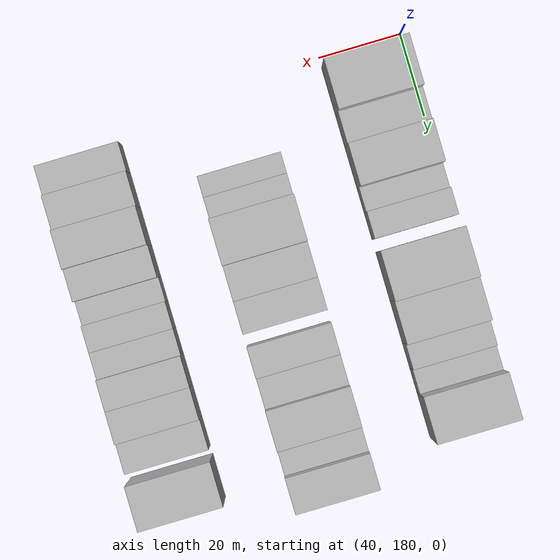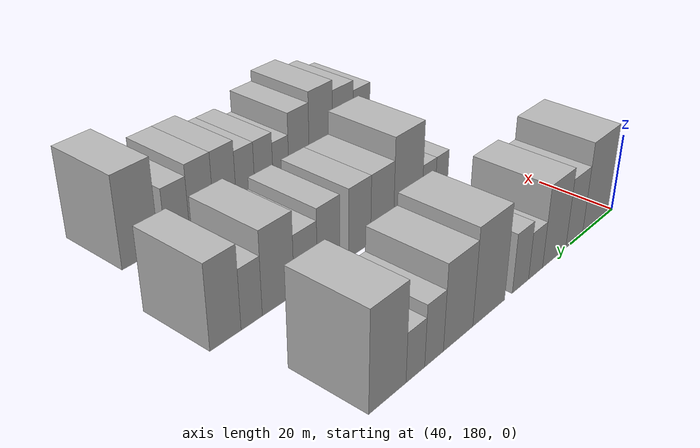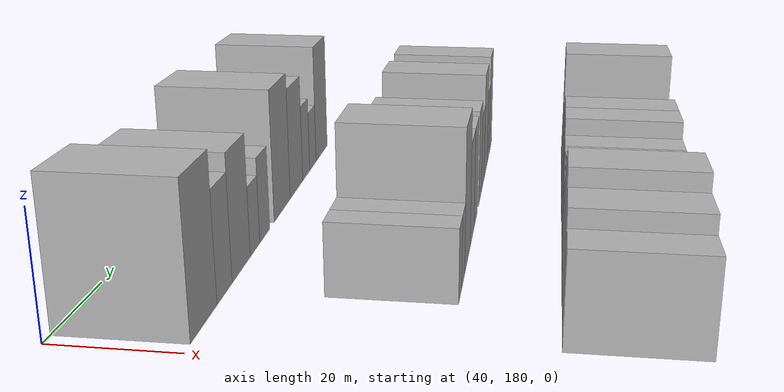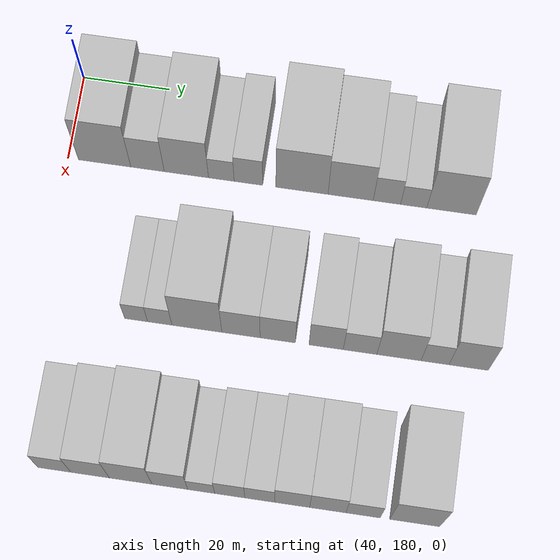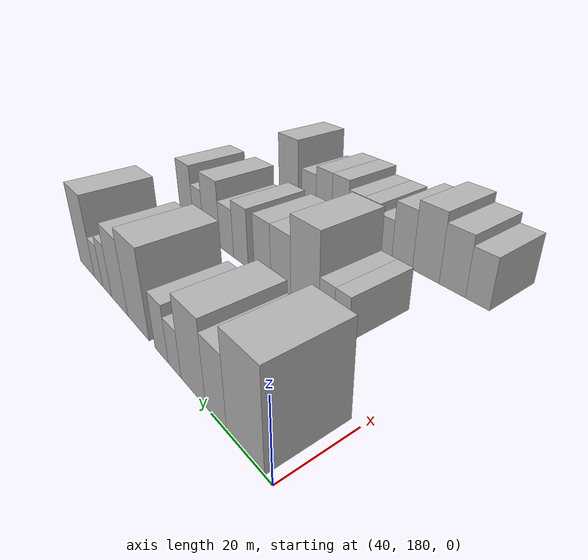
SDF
<sdf version="1.6">
 <world name="default">
  <model name="building_63">
   <static>1</static>
   <pose>50.0000 188.4641 0 0.000000 0.000000 0.000000</pose>
   <link name="link">
    <pose>0 0 12.00 0 0 0</pose>
    <collision name="collision"><geometry><box><size>20.0000 11.9973 24.0000</size></box></geometry></collision>
    <visual name="visual">
     <cast_shadows>0</cast_shadows>
     <geometry><box><size>20.0000 11.9973 24.0000</size></box></geometry>
     <material>
      <script>
       <uri>model://HANNAS_wall/materials/scripts</uri>
       <uri>model://HANNAS_wall/materials/textures</uri>
       <name>vrc/HANNAS_wall</name>
      </script>
     </material>
    </visual>
   </link>
  </model>
  <model name="building_64">
   <static>1</static>
   <pose>50.0000 198.2894 0 0.000000 0.000000 0.000000</pose>
   <link name="link">
    <pose>0 0 9.00 0 0 0</pose>
    <collision name="collision"><geometry><box><size>20.0000 7.6532 18.0000</size></box></geometry></collision>
    <visual name="visual">
     <cast_shadows>0</cast_shadows>
     <geometry><box><size>20.0000 7.6532 18.0000</size></box></geometry>
     <material>
      <script>
       <uri>model://HANNAS_wall/materials/scripts</uri>
       <uri>model://HANNAS_wall/materials/textures</uri>
       <name>vrc/HANNAS_wall</name>
      </script>
     </material>
    </visual>
   </link>
  </model>
  <model name="building_65">
   <static>1</static>
   <pose>50.0000 207.1650 0 0.000000 0.000000 0.000000</pose>
   <link name="link">
    <pose>0 0 10.50 0 0 0</pose>
    <collision name="collision"><geometry><box><size>20.0000 10.0982 21.0000</size></box></geometry></collision>
    <visual name="visual">
     <cast_shadows>0</cast_shadows>
     <geometry><box><size>20.0000 10.0982 21.0000</size></box></geometry>
     <material>
      <script>
       <uri>model://HANNAS_wall/materials/scripts</uri>
       <uri>model://HANNAS_wall/materials/textures</uri>
       <name>vrc/HANNAS_wall</name>
      </script>
     </material>
    </visual>
   </link>
  </model>
  <model name="building_66">
   <static>1</static>
   <pose>50.0000 215.1283 0 0.000000 0.000000 0.000000</pose>
   <link name="link">
    <pose>0 0 6.00 0 0 0</pose>
    <collision name="collision"><geometry><box><size>20.0000 5.8283 12.0000</size></box></geometry></collision>
    <visual name="visual">
     <cast_shadows>0</cast_shadows>
     <geometry><box><size>20.0000 5.8283 12.0000</size></box></geometry>
     <material>
      <script>
       <uri>model://HANNAS_wall/materials/scripts</uri>
       <uri>model://HANNAS_wall/materials/textures</uri>
       <name>vrc/HANNAS_wall</name>
      </script>
     </material>
    </visual>
   </link>
  </model>
  <model name="building_67">
   <static>1</static>
   <pose>50.0000 221.2899 0 0.000000 0.000000 0.000000</pose>
   <link name="link">
    <pose>0 0 7.50 0 0 0</pose>
    <collision name="collision"><geometry><box><size>20.0000 6.4949 15.0000</size></box></geometry></collision>
    <visual name="visual">
     <cast_shadows>0</cast_shadows>
     <geometry><box><size>20.0000 6.4949 15.0000</size></box></geometry>
     <material>
      <script>
       <uri>model://HANNAS_wall/materials/scripts</uri>
       <uri>model://HANNAS_wall/materials/textures</uri>
       <name>vrc/HANNAS_wall</name>
      </script>
     </material>
    </visual>
   </link>
  </model>
  <model name="building_68">
   <static>1</static>
   <pose>50.0000 233.4532 0 0.000000 0.000000 0.000000</pose>
   <link name="link">
    <pose>0 0 12.00 0 0 0</pose>
    <collision name="collision"><geometry><box><size>20.0000 11.8316 24.0000</size></box></geometry></collision>
    <visual name="visual">
     <cast_shadows>0</cast_shadows>
     <geometry><box><size>20.0000 11.8316 24.0000</size></box></geometry>
     <material>
      <script>
       <uri>model://HANNAS_wall/materials/scripts</uri>
       <uri>model://HANNAS_wall/materials/textures</uri>
       <name>vrc/HANNAS_wall</name>
      </script>
     </material>
    </visual>
   </link>
  </model>
  <model name="building_69">
   <static>1</static>
   <pose>50.0000 244.4825 0 0.000000 0.000000 0.000000</pose>
   <link name="link">
    <pose>0 0 10.50 0 0 0</pose>
    <collision name="collision"><geometry><box><size>20.0000 10.2271 21.0000</size></box></geometry></collision>
    <visual name="visual">
     <cast_shadows>0</cast_shadows>
     <geometry><box><size>20.0000 10.2271 21.0000</size></box></geometry>
     <material>
      <script>
       <uri>model://HANNAS_wall/materials/scripts</uri>
       <uri>model://HANNAS_wall/materials/textures</uri>
       <name>vrc/HANNAS_wall</name>
      </script>
     </material>
    </visual>
   </link>
  </model>
  <model name="building_70">
   <static>1</static>
   <pose>50.0000 252.6746 0 0.000000 0.000000 0.000000</pose>
   <link name="link">
    <pose>0 0 7.50 0 0 0</pose>
    <collision name="collision"><geometry><box><size>20.0000 6.1571 15.0000</size></box></geometry></collision>
    <visual name="visual">
     <cast_shadows>0</cast_shadows>
     <geometry><box><size>20.0000 6.1571 15.0000</size></box></geometry>
     <material>
      <script>
       <uri>model://HANNAS_wall/materials/scripts</uri>
       <uri>model://HANNAS_wall/materials/textures</uri>
       <name>vrc/HANNAS_wall</name>
      </script>
     </material>
    </visual>
   </link>
  </model>
  <model name="building_71">
   <static>1</static>
   <pose>50.0000 258.7114 0 0.000000 0.000000 0.000000</pose>
   <link name="link">
    <pose>0 0 6.00 0 0 0</pose>
    <collision name="collision"><geometry><box><size>20.0000 5.9164 12.0000</size></box></geometry></collision>
    <visual name="visual">
     <cast_shadows>0</cast_shadows>
     <geometry><box><size>20.0000 5.9164 12.0000</size></box></geometry>
     <material>
      <script>
       <uri>model://HANNAS_wall/materials/scripts</uri>
       <uri>model://HANNAS_wall/materials/textures</uri>
       <name>vrc/HANNAS_wall</name>
      </script>
     </material>
    </visual>
   </link>
  </model>
  <model name="building_72">
   <static>1</static>
   <pose>50.0000 267.2373 0 0.000000 0.000000 0.000000</pose>
   <link name="link">
    <pose>0 0 12.00 0 0 0</pose>
    <collision name="collision"><geometry><box><size>20.0000 11.1354 24.0000</size></box></geometry></collision>
    <visual name="visual">
     <cast_shadows>0</cast_shadows>
     <geometry><box><size>20.0000 11.1354 24.0000</size></box></geometry>
     <material>
      <script>
       <uri>model://HANNAS_wall/materials/scripts</uri>
       <uri>model://HANNAS_wall/materials/textures</uri>
       <name>vrc/HANNAS_wall</name>
      </script>
     </material>
    </visual>
   </link>
  </model>
  <model name="building_149">
   <static>1</static>
   <pose>85.0000 201.7659 0 0.000000 0.000000 0.000000</pose>
   <link name="link">
    <pose>0 0 6.00 0 0 0</pose>
    <collision name="collision"><geometry><box><size>20.0000 5.0970 12.0000</size></box></geometry></collision>
    <visual name="visual">
     <cast_shadows>0</cast_shadows>
     <geometry><box><size>20.0000 5.0970 12.0000</size></box></geometry>
     <material>
      <script>
       <uri>model://HANNAS_wall/materials/scripts</uri>
       <uri>model://HANNAS_wall/materials/textures</uri>
       <name>vrc/HANNAS_wall</name>
      </script>
     </material>
    </visual>
   </link>
  </model>
  <model name="building_150">
   <static>1</static>
   <pose>85.0000 207.0066 0 0.000000 0.000000 0.000000</pose>
   <link name="link">
    <pose>0 0 6.00 0 0 0</pose>
    <collision name="collision"><geometry><box><size>20.0000 5.3845 12.0000</size></box></geometry></collision>
    <visual name="visual">
     <cast_shadows>0</cast_shadows>
     <geometry><box><size>20.0000 5.3845 12.0000</size></box></geometry>
     <material>
      <script>
       <uri>model://HANNAS_wall/materials/scripts</uri>
       <uri>model://HANNAS_wall/materials/textures</uri>
       <name>vrc/HANNAS_wall</name>
      </script>
     </material>
    </visual>
   </link>
  </model>
  <model name="building_151">
   <static>1</static>
   <pose>85.0000 215.2189 0 0.000000 0.000000 0.000000</pose>
   <link name="link">
    <pose>0 0 12.00 0 0 0</pose>
    <collision name="collision"><geometry><box><size>20.0000 11.0400 24.0000</size></box></geometry></collision>
    <visual name="visual">
     <cast_shadows>0</cast_shadows>
     <geometry><box><size>20.0000 11.0400 24.0000</size></box></geometry>
     <material>
      <script>
       <uri>model://HANNAS_wall/materials/scripts</uri>
       <uri>model://HANNAS_wall/materials/textures</uri>
       <name>vrc/HANNAS_wall</name>
      </script>
     </material>
    </visual>
   </link>
  </model>
  <model name="building_152">
   <static>1</static>
   <pose>85.0000 224.9638 0 0.000000 0.000000 0.000000</pose>
   <link name="link">
    <pose>0 0 9.00 0 0 0</pose>
    <collision name="collision"><geometry><box><size>20.0000 8.4497 18.0000</size></box></geometry></collision>
    <visual name="visual">
     <cast_shadows>0</cast_shadows>
     <geometry><box><size>20.0000 8.4497 18.0000</size></box></geometry>
     <material>
      <script>
       <uri>model://HANNAS_wall/materials/scripts</uri>
       <uri>model://HANNAS_wall/materials/textures</uri>
       <name>vrc/HANNAS_wall</name>
      </script>
     </material>
    </visual>
   </link>
  </model>
  <model name="building_153">
   <static>1</static>
   <pose>85.0000 233.0754 0 0.000000 0.000000 0.000000</pose>
   <link name="link">
    <pose>0 0 9.00 0 0 0</pose>
    <collision name="collision"><geometry><box><size>20.0000 7.7736 18.0000</size></box></geometry></collision>
    <visual name="visual">
     <cast_shadows>0</cast_shadows>
     <geometry><box><size>20.0000 7.7736 18.0000</size></box></geometry>
     <material>
      <script>
       <uri>model://HANNAS_wall/materials/scripts</uri>
       <uri>model://HANNAS_wall/materials/textures</uri>
       <name>vrc/HANNAS_wall</name>
      </script>
     </material>
    </visual>
   </link>
  </model>
  <model name="building_154">
   <static>1</static>
   <pose>85.0000 243.7197 0 0.000000 0.000000 0.000000</pose>
   <link name="link">
    <pose>0 0 9.00 0 0 0</pose>
    <collision name="collision"><geometry><box><size>20.0000 7.5150 18.0000</size></box></geometry></collision>
    <visual name="visual">
     <cast_shadows>0</cast_shadows>
     <geometry><box><size>20.0000 7.5150 18.0000</size></box></geometry>
     <material>
      <script>
       <uri>model://HANNAS_wall/materials/scripts</uri>
       <uri>model://HANNAS_wall/materials/textures</uri>
       <name>vrc/HANNAS_wall</name>
      </script>
     </material>
    </visual>
   </link>
  </model>
  <model name="building_155">
   <static>1</static>
   <pose>85.0000 251.1692 0 0.000000 0.000000 0.000000</pose>
   <link name="link">
    <pose>0 0 7.50 0 0 0</pose>
    <collision name="collision"><geometry><box><size>20.0000 7.3840 15.0000</size></box></geometry></collision>
    <visual name="visual">
     <cast_shadows>0</cast_shadows>
     <geometry><box><size>20.0000 7.3840 15.0000</size></box></geometry>
     <material>
      <script>
       <uri>model://HANNAS_wall/materials/scripts</uri>
       <uri>model://HANNAS_wall/materials/textures</uri>
       <name>vrc/HANNAS_wall</name>
      </script>
     </material>
    </visual>
   </link>
  </model>
  <model name="building_156">
   <static>1</static>
   <pose>85.0000 259.6857 0 0.000000 0.000000 0.000000</pose>
   <link name="link">
    <pose>0 0 10.50 0 0 0</pose>
    <collision name="collision"><geometry><box><size>20.0000 9.6489 21.0000</size></box></geometry></collision>
    <visual name="visual">
     <cast_shadows>0</cast_shadows>
     <geometry><box><size>20.0000 9.6489 21.0000</size></box></geometry>
     <material>
      <script>
       <uri>model://HANNAS_wall/materials/scripts</uri>
       <uri>model://HANNAS_wall/materials/textures</uri>
       <name>vrc/HANNAS_wall</name>
      </script>
     </material>
    </visual>
   </link>
  </model>
  <model name="building_157">
   <static>1</static>
   <pose>85.0000 267.5702 0 0.000000 0.000000 0.000000</pose>
   <link name="link">
    <pose>0 0 7.50 0 0 0</pose>
    <collision name="collision"><geometry><box><size>20.0000 6.1201 15.0000</size></box></geometry></collision>
    <visual name="visual">
     <cast_shadows>0</cast_shadows>
     <geometry><box><size>20.0000 6.1201 15.0000</size></box></geometry>
     <material>
      <script>
       <uri>model://HANNAS_wall/materials/scripts</uri>
       <uri>model://HANNAS_wall/materials/textures</uri>
       <name>vrc/HANNAS_wall</name>
      </script>
     </material>
    </visual>
   </link>
  </model>
  <model name="building_158">
   <static>1</static>
   <pose>85.0000 274.9377 0 0.000000 0.000000 0.000000</pose>
   <link name="link">
    <pose>0 0 10.50 0 0 0</pose>
    <collision name="collision"><geometry><box><size>20.0000 8.6150 21.0000</size></box></geometry></collision>
    <visual name="visual">
     <cast_shadows>0</cast_shadows>
     <geometry><box><size>20.0000 8.6150 21.0000</size></box></geometry>
     <material>
      <script>
       <uri>model://HANNAS_wall/materials/scripts</uri>
       <uri>model://HANNAS_wall/materials/textures</uri>
       <name>vrc/HANNAS_wall</name>
      </script>
     </material>
    </visual>
   </link>
  </model>
  <model name="building_225">
   <static>1</static>
   <pose>120.0000 190.1866 0 0.000000 0.000000 0.000000</pose>
   <link name="link">
    <pose>0 0 7.50 0 0 0</pose>
    <collision name="collision"><geometry><box><size>20.0000 7.1170 15.0000</size></box></geometry></collision>
    <visual name="visual">
     <cast_shadows>0</cast_shadows>
     <geometry><box><size>20.0000 7.1170 15.0000</size></box></geometry>
     <material>
      <script>
       <uri>model://HANNAS_wall/materials/scripts</uri>
       <uri>model://HANNAS_wall/materials/textures</uri>
       <name>vrc/HANNAS_wall</name>
      </script>
     </material>
    </visual>
   </link>
  </model>
  <model name="building_226">
   <static>1</static>
   <pose>120.0000 197.9017 0 0.000000 0.000000 0.000000</pose>
   <link name="link">
    <pose>0 0 9.00 0 0 0</pose>
    <collision name="collision"><geometry><box><size>20.0000 8.3133 18.0000</size></box></geometry></collision>
    <visual name="visual">
     <cast_shadows>0</cast_shadows>
     <geometry><box><size>20.0000 8.3133 18.0000</size></box></geometry>
     <material>
      <script>
       <uri>model://HANNAS_wall/materials/scripts</uri>
       <uri>model://HANNAS_wall/materials/textures</uri>
       <name>vrc/HANNAS_wall</name>
      </script>
     </material>
    </visual>
   </link>
  </model>
  <model name="building_227">
   <static>1</static>
   <pose>120.0000 206.6567 0 0.000000 0.000000 0.000000</pose>
   <link name="link">
    <pose>0 0 10.50 0 0 0</pose>
    <collision name="collision"><geometry><box><size>20.0000 9.1966 21.0000</size></box></geometry></collision>
    <visual name="visual">
     <cast_shadows>0</cast_shadows>
     <geometry><box><size>20.0000 9.1966 21.0000</size></box></geometry>
     <material>
      <script>
       <uri>model://HANNAS_wall/materials/scripts</uri>
       <uri>model://HANNAS_wall/materials/textures</uri>
       <name>vrc/HANNAS_wall</name>
      </script>
     </material>
    </visual>
   </link>
  </model>
  <model name="building_228">
   <static>1</static>
   <pose>120.0000 215.0973 0 0.000000 0.000000 0.000000</pose>
   <link name="link">
    <pose>0 0 9.00 0 0 0</pose>
    <collision name="collision"><geometry><box><size>20.0000 7.6846 18.0000</size></box></geometry></collision>
    <visual name="visual">
     <cast_shadows>0</cast_shadows>
     <geometry><box><size>20.0000 7.6846 18.0000</size></box></geometry>
     <material>
      <script>
       <uri>model://HANNAS_wall/materials/scripts</uri>
       <uri>model://HANNAS_wall/materials/textures</uri>
       <name>vrc/HANNAS_wall</name>
      </script>
     </material>
    </visual>
   </link>
  </model>
  <model name="building_229">
   <static>1</static>
   <pose>120.0000 221.8218 0 0.000000 0.000000 0.000000</pose>
   <link name="link">
    <pose>0 0 6.00 0 0 0</pose>
    <collision name="collision"><geometry><box><size>20.0000 5.7645 12.0000</size></box></geometry></collision>
    <visual name="visual">
     <cast_shadows>0</cast_shadows>
     <geometry><box><size>20.0000 5.7645 12.0000</size></box></geometry>
     <material>
      <script>
       <uri>model://HANNAS_wall/materials/scripts</uri>
       <uri>model://HANNAS_wall/materials/textures</uri>
       <name>vrc/HANNAS_wall</name>
      </script>
     </material>
    </visual>
   </link>
  </model>
  <model name="building_230">
   <static>1</static>
   <pose>120.0000 227.9317 0 0.000000 0.000000 0.000000</pose>
   <link name="link">
    <pose>0 0 7.50 0 0 0</pose>
    <collision name="collision"><geometry><box><size>20.0000 6.4552 15.0000</size></box></geometry></collision>
    <visual name="visual">
     <cast_shadows>0</cast_shadows>
     <geometry><box><size>20.0000 6.4552 15.0000</size></box></geometry>
     <material>
      <script>
       <uri>model://HANNAS_wall/materials/scripts</uri>
       <uri>model://HANNAS_wall/materials/textures</uri>
       <name>vrc/HANNAS_wall</name>
      </script>
     </material>
    </visual>
   </link>
  </model>
  <model name="building_231">
   <static>1</static>
   <pose>120.0000 234.3389 0 0.000000 0.000000 0.000000</pose>
   <link name="link">
    <pose>0 0 7.50 0 0 0</pose>
    <collision name="collision"><geometry><box><size>20.0000 6.3593 15.0000</size></box></geometry></collision>
    <visual name="visual">
     <cast_shadows>0</cast_shadows>
     <geometry><box><size>20.0000 6.3593 15.0000</size></box></geometry>
     <material>
      <script>
       <uri>model://HANNAS_wall/materials/scripts</uri>
       <uri>model://HANNAS_wall/materials/textures</uri>
       <name>vrc/HANNAS_wall</name>
      </script>
     </material>
    </visual>
   </link>
  </model>
  <model name="building_232">
   <static>1</static>
   <pose>120.0000 241.2539 0 0.000000 0.000000 0.000000</pose>
   <link name="link">
    <pose>0 0 9.00 0 0 0</pose>
    <collision name="collision"><geometry><box><size>20.0000 7.4707 18.0000</size></box></geometry></collision>
    <visual name="visual">
     <cast_shadows>0</cast_shadows>
     <geometry><box><size>20.0000 7.4707 18.0000</size></box></geometry>
     <material>
      <script>
       <uri>model://HANNAS_wall/materials/scripts</uri>
       <uri>model://HANNAS_wall/materials/textures</uri>
       <name>vrc/HANNAS_wall</name>
      </script>
     </material>
    </visual>
   </link>
  </model>
  <model name="building_233">
   <static>1</static>
   <pose>120.0000 248.8460 0 0.000000 0.000000 0.000000</pose>
   <link name="link">
    <pose>0 0 9.00 0 0 0</pose>
    <collision name="collision"><geometry><box><size>20.0000 7.7134 18.0000</size></box></geometry></collision>
    <visual name="visual">
     <cast_shadows>0</cast_shadows>
     <geometry><box><size>20.0000 7.7134 18.0000</size></box></geometry>
     <material>
      <script>
       <uri>model://HANNAS_wall/materials/scripts</uri>
       <uri>model://HANNAS_wall/materials/textures</uri>
       <name>vrc/HANNAS_wall</name>
      </script>
     </material>
    </visual>
   </link>
  </model>
  <model name="building_234">
   <static>1</static>
   <pose>120.0000 256.3696 0 0.000000 0.000000 0.000000</pose>
   <link name="link">
    <pose>0 0 7.50 0 0 0</pose>
    <collision name="collision"><geometry><box><size>20.0000 7.3338 15.0000</size></box></geometry></collision>
    <visual name="visual">
     <cast_shadows>0</cast_shadows>
     <geometry><box><size>20.0000 7.3338 15.0000</size></box></geometry>
     <material>
      <script>
       <uri>model://HANNAS_wall/materials/scripts</uri>
       <uri>model://HANNAS_wall/materials/textures</uri>
       <name>vrc/HANNAS_wall</name>
      </script>
     </material>
    </visual>
   </link>
  </model>
  <model name="building_235">
   <static>1</static>
   <pose>120.0000 267.3525 0 0.000000 0.000000 0.000000</pose>
   <link name="link">
    <pose>0 0 12.00 0 0 0</pose>
    <collision name="collision"><geometry><box><size>20.0000 10.6321 24.0000</size></box></geometry></collision>
    <visual name="visual">
     <cast_shadows>0</cast_shadows>
     <geometry><box><size>20.0000 10.6321 24.0000</size></box></geometry>
     <material>
      <script>
       <uri>model://HANNAS_wall/materials/scripts</uri>
       <uri>model://HANNAS_wall/materials/textures</uri>
       <name>vrc/HANNAS_wall</name>
      </script>
     </material>
    </visual>
   </link>
  </model>
 </world>
</sdf>
